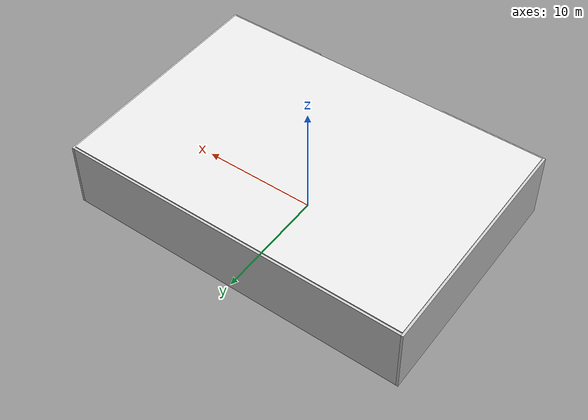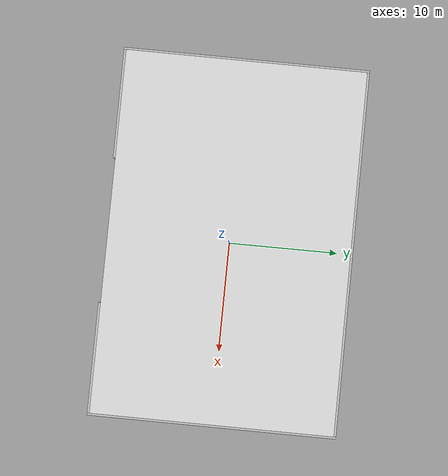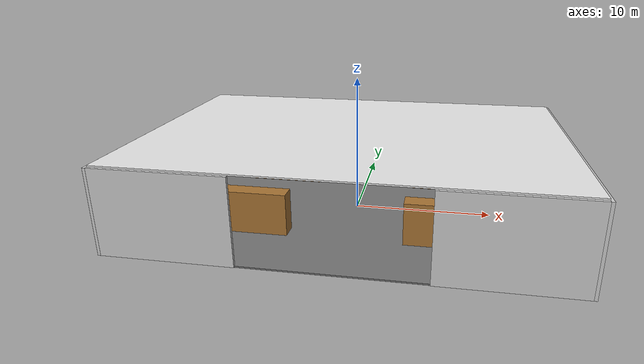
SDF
<sdf version="1.9">
 <world name="warehouse">
  <plugin filename="gz-sim-physics-system" name="gz::sim::systems::Physics"/>
  <plugin filename="gz-sim-user-commands-system" name="gz::sim::systems::UserCommands"/>
  <plugin filename="gz-sim-scene-broadcaster-system" name="gz::sim::systems::SceneBroadcaster"/>
  <plugin filename="gz-sim-imu-system" name="gz::sim::systems::Imu"/>
  <plugin filename="gz-sim-sensors-system" name="gz::sim::systems::Sensors">
   <render_engine>ogre2</render_engine>
  </plugin>
  <plugin filename="gz-sim-contact-system" name="gz::sim::systems::Contact"/>
  <physics name="1ms" type="ignore">
   <max_step_size>0.001</max_step_size>
   <real_time_factor>1.0</real_time_factor>
  </physics>
  <scene><ambient>0.3 0.3 0.3 1</ambient><background>0.6 0.7 0.8 1</background></scene>
  <light type="directional" name="sun">
   <pose>0 0 20 0 0 0</pose>
   <diffuse>0.5 0.5 0.5 1</diffuse>
   <specular>0.1 0.1 0.1 1</specular>
   <direction>-0.3 0.2 -0.9</direction>
  </light>
  <light type="point" name="light_nw">
   <pose>-7 5 5.5 0 0 0</pose>
   <diffuse>0.9 0.9 0.85 1</diffuse>
   <specular>0.1 0.1 0.1 1</specular>
   <attenuation>
    <range>20</range>
    <constant>0.3</constant>
    <linear>0.01</linear>
    <quadratic>0.001</quadratic>
   </attenuation>
  </light>
  <light type="point" name="light_ne">
   <pose>7 5 5.5 0 0 0</pose>
   <diffuse>0.9 0.9 0.85 1</diffuse>
   <specular>0.1 0.1 0.1 1</specular>
   <attenuation>
    <range>20</range>
    <constant>0.3</constant>
    <linear>0.01</linear>
    <quadratic>0.001</quadratic>
   </attenuation>
  </light>
  <light type="point" name="light_sw">
   <pose>-7 -5 5.5 0 0 0</pose>
   <diffuse>0.9 0.9 0.85 1</diffuse>
   <specular>0.1 0.1 0.1 1</specular>
   <attenuation>
    <range>20</range>
    <constant>0.3</constant>
    <linear>0.01</linear>
    <quadratic>0.001</quadratic>
   </attenuation>
  </light>
  <light type="point" name="light_se">
   <pose>7 -5 5.5 0 0 0</pose>
   <diffuse>0.9 0.9 0.85 1</diffuse>
   <specular>0.1 0.1 0.1 1</specular>
   <attenuation>
    <range>20</range>
    <constant>0.3</constant>
    <linear>0.01</linear>
    <quadratic>0.001</quadratic>
   </attenuation>
  </light>
  <model name="floor">
   <static>true</static>
   <pose>0 0 -0.05 0 0 0</pose>
   <link name="link">
    <collision name="c"><geometry><box><size>30 20 0.1</size></box></geometry></collision>
    <visual name="v">
     <geometry><box><size>30 20 0.1</size></box></geometry>
     <material><ambient>0.35 0.35 0.35 1</ambient><diffuse>0.45 0.45 0.45 1</diffuse></material>
    </visual>
   </link>
  </model>
  <model name="wall_north">
   <static>true</static>
   <pose>0 10.1 3 0 0 0</pose>
   <link name="link">
    <collision name="c"><geometry><box><size>30 0.2 6</size></box></geometry></collision>
    <visual name="v">
     <geometry><box><size>30 0.2 6</size></box></geometry>
     <material><ambient>0.7 0.7 0.7 1</ambient><diffuse>0.8 0.8 0.8 1</diffuse></material>
    </visual>
   </link>
  </model>
  <model name="wall_south_l">
   <static>true</static>
   <pose>-10.5 -10.1 3 0 0 0</pose>
   <link name="link">
    <collision name="c"><geometry><box><size>9 0.2 6</size></box></geometry></collision>
    <visual name="v">
     <geometry><box><size>9 0.2 6</size></box></geometry>
     <material><ambient>0.7 0.7 0.7 1</ambient><diffuse>0.8 0.8 0.8 1</diffuse></material>
    </visual>
   </link>
  </model>
  <model name="wall_south_r">
   <static>true</static>
   <pose>10.5 -10.1 3 0 0 0</pose>
   <link name="link">
    <collision name="c"><geometry><box><size>9 0.2 6</size></box></geometry></collision>
    <visual name="v">
     <geometry><box><size>9 0.2 6</size></box></geometry>
     <material><ambient>0.7 0.7 0.7 1</ambient><diffuse>0.8 0.8 0.8 1</diffuse></material>
    </visual>
   </link>
  </model>
  <model name="wall_east">
   <static>true</static>
   <pose>15.1 0 3 0 0 0</pose>
   <link name="link">
    <collision name="c"><geometry><box><size>0.2 20.4 6</size></box></geometry></collision>
    <visual name="v">
     <geometry><box><size>0.2 20.4 6</size></box></geometry>
     <material><ambient>0.7 0.7 0.7 1</ambient><diffuse>0.8 0.8 0.8 1</diffuse></material>
    </visual>
   </link>
  </model>
  <model name="wall_west">
   <static>true</static>
   <pose>-15.1 0 3 0 0 0</pose>
   <link name="link">
    <collision name="c"><geometry><box><size>0.2 20.4 6</size></box></geometry></collision>
    <visual name="v">
     <geometry><box><size>0.2 20.4 6</size></box></geometry>
     <material><ambient>0.7 0.7 0.7 1</ambient><diffuse>0.8 0.8 0.8 1</diffuse></material>
    </visual>
   </link>
  </model>
  <model name="ceiling">
   <static>true</static>
   <pose>0 0 6.05 0 0 0</pose>
   <link name="link">
    <collision name="c"><geometry><box><size>30 20 0.1</size></box></geometry></collision>
    <visual name="v">
     <geometry><box><size>30 20 0.1</size></box></geometry>
     <material><ambient>0.85 0.85 0.85 1</ambient><diffuse>0.9 0.9 0.9 1</diffuse></material>
    </visual>
   </link>
  </model>
  <model name="shelf_nw">
   <static>true</static>
   <pose>-7 5 1.5 0 0 0</pose>
   <link name="link">
    <collision name="c"><geometry><box><size>6 1.2 3</size></box></geometry></collision>
    <visual name="v">
     <geometry><box><size>6 1.2 3</size></box></geometry>
     <material><ambient>0.55 0.35 0.15 1</ambient><diffuse>0.65 0.45 0.2 1</diffuse></material>
    </visual>
   </link>
  </model>
  <model name="shelf_ne">
   <static>true</static>
   <pose>7 5 1.5 0 0 0</pose>
   <link name="link">
    <collision name="c"><geometry><box><size>6 1.2 3</size></box></geometry></collision>
    <visual name="v">
     <geometry><box><size>6 1.2 3</size></box></geometry>
     <material><ambient>0.55 0.35 0.15 1</ambient><diffuse>0.65 0.45 0.2 1</diffuse></material>
    </visual>
   </link>
  </model>
  <model name="shelf_sw">
   <static>true</static>
   <pose>-7 -5 1.5 0 0 0</pose>
   <link name="link">
    <collision name="c"><geometry><box><size>6 1.2 3</size></box></geometry></collision>
    <visual name="v">
     <geometry><box><size>6 1.2 3</size></box></geometry>
     <material><ambient>0.55 0.35 0.15 1</ambient><diffuse>0.65 0.45 0.2 1</diffuse></material>
    </visual>
   </link>
  </model>
  <model name="shelf_se">
   <static>true</static>
   <pose>7 -5 1.5 0 0 0</pose>
   <link name="link">
    <collision name="c"><geometry><box><size>6 1.2 3</size></box></geometry></collision>
    <visual name="v">
     <geometry><box><size>6 1.2 3</size></box></geometry>
     <material><ambient>0.55 0.35 0.15 1</ambient><diffuse>0.65 0.45 0.2 1</diffuse></material>
    </visual>
   </link>
  </model>
  <model name="crate_1">
   <static>true</static>
   <pose>-12 -7 0.5 0 0 0</pose>
   <link name="link">
    <collision name="c"><geometry><box><size>1 1 1</size></box></geometry></collision>
    <visual name="v">
     <geometry><box><size>1 1 1</size></box></geometry>
     <material><ambient>0.6 0.5 0.2 1</ambient><diffuse>0.7 0.6 0.3 1</diffuse></material>
    </visual>
   </link>
  </model>
  <model name="crate_2">
   <static>true</static>
   <pose>12 7 0.4 0 0 0.3</pose>
   <link name="link">
    <collision name="c"><geometry><box><size>1.2 0.8 0.8</size></box></geometry></collision>
    <visual name="v">
     <geometry><box><size>1.2 0.8 0.8</size></box></geometry>
     <material><ambient>0.6 0.5 0.2 1</ambient><diffuse>0.7 0.6 0.3 1</diffuse></material>
    </visual>
   </link>
  </model>
 </world>
</sdf>
